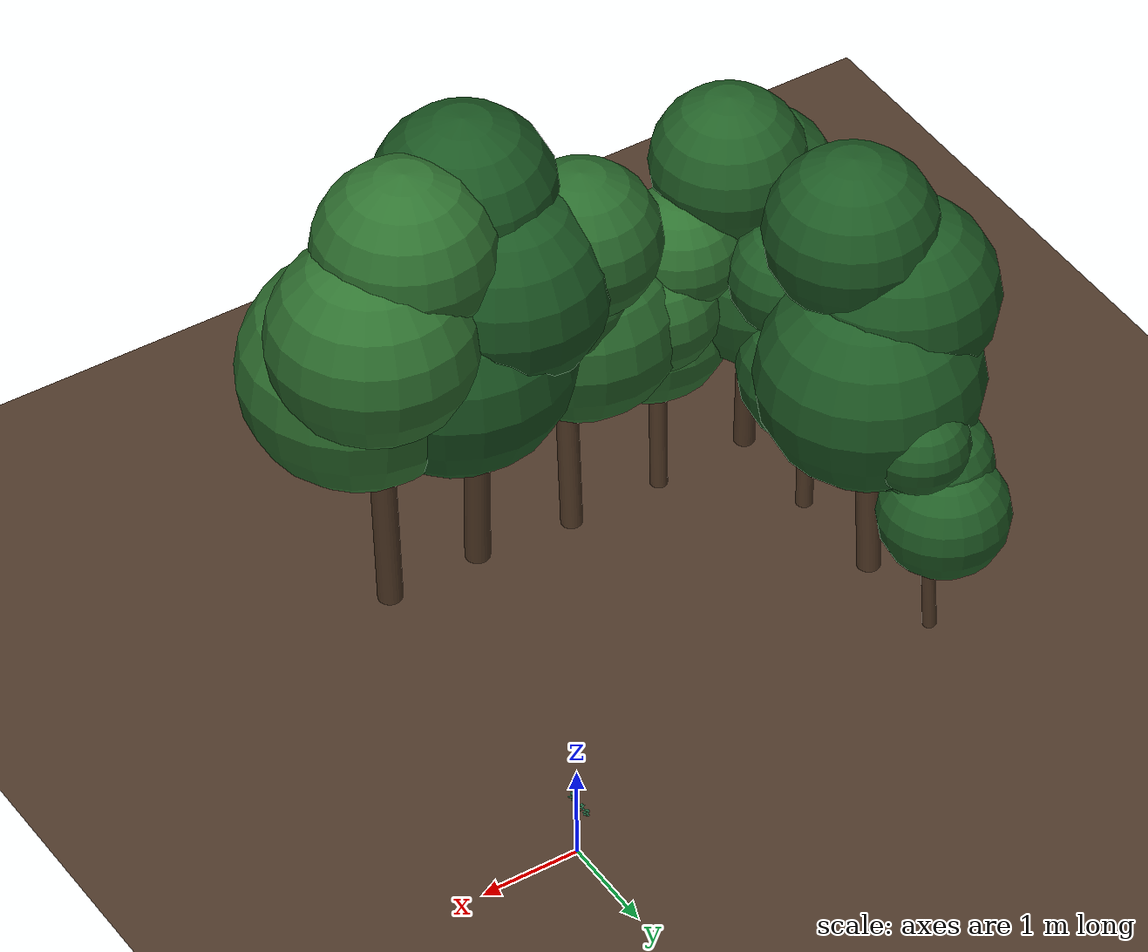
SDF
<sdf version="1.9">
 <world name="jim_field">
  <model name="ground_plane">
   <static>true</static>
   <link name="link">
    <collision name="collision">
     <geometry><plane><normal>0 0 1</normal><size>40 40</size></plane></geometry>
    </collision>
    <visual name="visual">
     <geometry><plane><normal>0 0 1</normal><size>40 40</size></plane></geometry>
     <material>
      <ambient>0.20 0.15 0.11 1</ambient>
      <diffuse>0.30 0.22 0.16 1</diffuse>
      <specular>0.01 0.01 0.01 1</specular>
     </material>
    </visual>
   </link>
  </model>
  <model name="field">
   <static>true</static>
   <pose>0.1837 -0.2516 0 0 0 0</pose>
   <model name="crop_17">
    <static>true</static>
    <pose>-0.4957 -0.3334 0 0 0 0</pose>
    <link name="link">
     <visual name="stem">
      <pose>0 0 0.0429 0 0 0</pose>
      <geometry><cylinder><radius>0.0027</radius><length>0.0858</length></cylinder></geometry>
      <material>
       <ambient>0.10 0.22 0.09 1</ambient>
       <diffuse>0.20 0.40 0.16 1</diffuse>
       <specular>0.05 0.06 0.05 1</specular>
      </material>
     </visual>
     <visual name="leaflet_0_0">
      <pose>-0.0079 -0.0168 0.0257 0 -0.300 4.2722</pose>
      <geometry><ellipsoid><radii>0.0170 0.0105 0.0016</radii></ellipsoid></geometry>
      <material>
       <ambient>0.073 0.206 0.115 1</ambient>
       <diffuse>0.137 0.391 0.248 1</diffuse>
       <specular>0.05 0.06 0.05 1</specular>
      </material>
     </visual>
     <visual name="leaflet_0_1">
      <pose>0.0079 0.0168 0.0257 0 -0.300 7.4138</pose>
      <geometry><ellipsoid><radii>0.0170 0.0105 0.0016</radii></ellipsoid></geometry>
      <material>
       <ambient>0.073 0.206 0.115 1</ambient>
       <diffuse>0.137 0.391 0.248 1</diffuse>
       <specular>0.05 0.06 0.05 1</specular>
      </material>
     </visual>
     <visual name="leaflet_1_0">
      <pose>0.0147 -0.0114 0.0435 0 -0.200 5.6222</pose>
      <geometry><ellipsoid><radii>0.0170 0.0105 0.0016</radii></ellipsoid></geometry>
      <material>
       <ambient>0.073 0.206 0.115 1</ambient>
       <diffuse>0.137 0.391 0.248 1</diffuse>
       <specular>0.05 0.06 0.05 1</specular>
      </material>
     </visual>
     <visual name="leaflet_1_1">
      <pose>-0.0147 0.0114 0.0435 0 -0.200 8.7638</pose>
      <geometry><ellipsoid><radii>0.0170 0.0105 0.0016</radii></ellipsoid></geometry>
      <material>
       <ambient>0.073 0.206 0.115 1</ambient>
       <diffuse>0.137 0.391 0.248 1</diffuse>
       <specular>0.05 0.06 0.05 1</specular>
      </material>
     </visual>
     <visual name="leaflet_2_0">
      <pose>0.0143 0.0118 0.0612 0 -0.100 6.9722</pose>
      <geometry><ellipsoid><radii>0.0170 0.0105 0.0016</radii></ellipsoid></geometry>
      <material>
       <ambient>0.073 0.206 0.115 1</ambient>
       <diffuse>0.137 0.391 0.248 1</diffuse>
       <specular>0.05 0.06 0.05 1</specular>
      </material>
     </visual>
     <visual name="leaflet_2_1">
      <pose>-0.0143 -0.0118 0.0612 0 -0.100 10.1138</pose>
      <geometry><ellipsoid><radii>0.0170 0.0105 0.0016</radii></ellipsoid></geometry>
      <material>
       <ambient>0.073 0.206 0.115 1</ambient>
       <diffuse>0.137 0.391 0.248 1</diffuse>
       <specular>0.05 0.06 0.05 1</specular>
      </material>
     </visual>
     <visual name="leaflet_terminal">
      <pose>0 0 0.0898 0 -0.12 4.2722</pose>
      <geometry><ellipsoid><radii>0.0215 0.0140 0.0018</radii></ellipsoid></geometry>
      <material>
       <ambient>0.073 0.206 0.115 1</ambient>
       <diffuse>0.137 0.391 0.248 1</diffuse>
       <specular>0.05 0.06 0.05 1</specular>
      </material>
     </visual>
    </link>
   </model>
   <model name="crop_51">
    <static>true</static>
    <pose>-0.4966 -0.1671 0 0 0 0</pose>
    <link name="link">
     <visual name="stem">
      <pose>0 0 0.0384 0 0 0</pose>
      <geometry><cylinder><radius>0.0026</radius><length>0.0768</length></cylinder></geometry>
      <material>
       <ambient>0.10 0.22 0.09 1</ambient>
       <diffuse>0.20 0.40 0.16 1</diffuse>
       <specular>0.05 0.06 0.05 1</specular>
      </material>
     </visual>
     <visual name="leaflet_0_0">
      <pose>0.0161 0.0082 0.0230 0 -0.300 0.4725</pose>
      <geometry><ellipsoid><radii>0.0170 0.0105 0.0016</radii></ellipsoid></geometry>
      <material>
       <ambient>0.096 0.244 0.145 1</ambient>
       <diffuse>0.183 0.468 0.302 1</diffuse>
       <specular>0.05 0.06 0.05 1</specular>
      </material>
     </visual>
     <visual name="leaflet_0_1">
      <pose>-0.0161 -0.0082 0.0230 0 -0.300 3.6141</pose>
      <geometry><ellipsoid><radii>0.0170 0.0105 0.0016</radii></ellipsoid></geometry>
      <material>
       <ambient>0.096 0.244 0.145 1</ambient>
       <diffuse>0.183 0.468 0.302 1</diffuse>
       <specular>0.05 0.06 0.05 1</specular>
      </material>
     </visual>
     <visual name="leaflet_1_0">
      <pose>-0.0045 0.0175 0.0389 0 -0.200 1.8225</pose>
      <geometry><ellipsoid><radii>0.0170 0.0105 0.0016</radii></ellipsoid></geometry>
      <material>
       <ambient>0.096 0.244 0.145 1</ambient>
       <diffuse>0.183 0.468 0.302 1</diffuse>
       <specular>0.05 0.06 0.05 1</specular>
      </material>
     </visual>
     <visual name="leaflet_1_1">
      <pose>0.0045 -0.0175 0.0389 0 -0.200 4.9641</pose>
      <geometry><ellipsoid><radii>0.0170 0.0105 0.0016</radii></ellipsoid></geometry>
      <material>
       <ambient>0.096 0.244 0.145 1</ambient>
       <diffuse>0.183 0.468 0.302 1</diffuse>
       <specular>0.05 0.06 0.05 1</specular>
      </material>
     </visual>
     <visual name="leaflet_2_0">
      <pose>-0.0181 -0.0006 0.0548 0 -0.100 3.1725</pose>
      <geometry><ellipsoid><radii>0.0170 0.0105 0.0016</radii></ellipsoid></geometry>
      <material>
       <ambient>0.096 0.244 0.145 1</ambient>
       <diffuse>0.183 0.468 0.302 1</diffuse>
       <specular>0.05 0.06 0.05 1</specular>
      </material>
     </visual>
     <visual name="leaflet_2_1">
      <pose>0.0181 0.0006 0.0548 0 -0.100 6.3141</pose>
      <geometry><ellipsoid><radii>0.0170 0.0105 0.0016</radii></ellipsoid></geometry>
      <material>
       <ambient>0.096 0.244 0.145 1</ambient>
       <diffuse>0.183 0.468 0.302 1</diffuse>
       <specular>0.05 0.06 0.05 1</specular>
      </material>
     </visual>
     <visual name="leaflet_terminal">
      <pose>0 0 0.0808 0 -0.12 0.4725</pose>
      <geometry><ellipsoid><radii>0.0215 0.0140 0.0018</radii></ellipsoid></geometry>
      <material>
       <ambient>0.096 0.244 0.145 1</ambient>
       <diffuse>0.183 0.468 0.302 1</diffuse>
       <specular>0.05 0.06 0.05 1</specular>
      </material>
     </visual>
    </link>
   </model>
   <model name="crop_68">
    <static>true</static>
    <pose>-0.4981 -0.0860 0 0 0 0</pose>
    <link name="link">
     <visual name="stem">
      <pose>0 0 0.0387 0 0 0</pose>
      <geometry><cylinder><radius>0.0026</radius><length>0.0774</length></cylinder></geometry>
      <material>
       <ambient>0.10 0.22 0.09 1</ambient>
       <diffuse>0.20 0.40 0.16 1</diffuse>
       <specular>0.05 0.06 0.05 1</specular>
      </material>
     </visual>
     <visual name="leaflet_0_0">
      <pose>-0.0079 0.0163 0.0232 0 -0.300 2.0237</pose>
      <geometry><ellipsoid><radii>0.0170 0.0105 0.0016</radii></ellipsoid></geometry>
      <material>
       <ambient>0.083 0.222 0.128 1</ambient>
       <diffuse>0.157 0.424 0.271 1</diffuse>
       <specular>0.05 0.06 0.05 1</specular>
      </material>
     </visual>
     <visual name="leaflet_0_1">
      <pose>0.0079 -0.0163 0.0232 0 -0.300 5.1653</pose>
      <geometry><ellipsoid><radii>0.0170 0.0105 0.0016</radii></ellipsoid></geometry>
      <material>
       <ambient>0.083 0.222 0.128 1</ambient>
       <diffuse>0.157 0.424 0.271 1</diffuse>
       <specular>0.05 0.06 0.05 1</specular>
      </material>
     </visual>
     <visual name="leaflet_1_0">
      <pose>-0.0176 -0.0042 0.0352 0 -0.200 3.3737</pose>
      <geometry><ellipsoid><radii>0.0170 0.0105 0.0016</radii></ellipsoid></geometry>
      <material>
       <ambient>0.083 0.222 0.128 1</ambient>
       <diffuse>0.157 0.424 0.271 1</diffuse>
       <specular>0.05 0.06 0.05 1</specular>
      </material>
     </visual>
     <visual name="leaflet_1_1">
      <pose>0.0176 0.0042 0.0352 0 -0.200 6.5153</pose>
      <geometry><ellipsoid><radii>0.0170 0.0105 0.0016</radii></ellipsoid></geometry>
      <material>
       <ambient>0.083 0.222 0.128 1</ambient>
       <diffuse>0.157 0.424 0.271 1</diffuse>
       <specular>0.05 0.06 0.05 1</specular>
      </material>
     </visual>
     <visual name="leaflet_2_0">
      <pose>0.0002 -0.0181 0.0472 0 -0.100 4.7237</pose>
      <geometry><ellipsoid><radii>0.0170 0.0105 0.0016</radii></ellipsoid></geometry>
      <material>
       <ambient>0.083 0.222 0.128 1</ambient>
       <diffuse>0.157 0.424 0.271 1</diffuse>
       <specular>0.05 0.06 0.05 1</specular>
      </material>
     </visual>
     <visual name="leaflet_2_1">
      <pose>-0.0002 0.0181 0.0472 0 -0.100 7.8653</pose>
      <geometry><ellipsoid><radii>0.0170 0.0105 0.0016</radii></ellipsoid></geometry>
      <material>
       <ambient>0.083 0.222 0.128 1</ambient>
       <diffuse>0.157 0.424 0.271 1</diffuse>
       <specular>0.05 0.06 0.05 1</specular>
      </material>
     </visual>
     <visual name="leaflet_3_0">
      <pose>0.0177 -0.0038 0.0592 0 0.000 6.0737</pose>
      <geometry><ellipsoid><radii>0.0170 0.0105 0.0016</radii></ellipsoid></geometry>
      <material>
       <ambient>0.083 0.222 0.128 1</ambient>
       <diffuse>0.157 0.424 0.271 1</diffuse>
       <specular>0.05 0.06 0.05 1</specular>
      </material>
     </visual>
     <visual name="leaflet_3_1">
      <pose>-0.0177 0.0038 0.0592 0 0.000 9.2153</pose>
      <geometry><ellipsoid><radii>0.0170 0.0105 0.0016</radii></ellipsoid></geometry>
      <material>
       <ambient>0.083 0.222 0.128 1</ambient>
       <diffuse>0.157 0.424 0.271 1</diffuse>
       <specular>0.05 0.06 0.05 1</specular>
      </material>
     </visual>
     <visual name="leaflet_terminal">
      <pose>0 0 0.0814 0 -0.12 2.0237</pose>
      <geometry><ellipsoid><radii>0.0215 0.0140 0.0018</radii></ellipsoid></geometry>
      <material>
       <ambient>0.083 0.222 0.128 1</ambient>
       <diffuse>0.157 0.424 0.271 1</diffuse>
       <specular>0.05 0.06 0.05 1</specular>
      </material>
     </visual>
    </link>
   </model>
   <model name="tree_21">
    <static>true</static>
    <pose>-0.5056 -3.5500 0 0 0 0</pose>
    <link name="link">
     <visual name="trunk">
      <pose>0 0 1.1012 -0.0049 0.0311 0</pose>
      <geometry><cylinder><radius>0.1224</radius><length>2.2024</length></cylinder></geometry>
      <material>
       <ambient>0.16 0.11 0.07 1</ambient>
       <diffuse>0.34 0.24 0.16 1</diffuse>
       <specular>0.03 0.03 0.03 1</specular>
      </material>
     </visual>
     <visual name="foliage_0">
      <pose>0.0826 -0.2562 2.7114 0 0 0</pose>
      <geometry><sphere><radius>1.1502</radius></sphere></geometry>
      <material>
       <ambient>0.083 0.220 0.085 1</ambient>
       <diffuse>0.184 0.447 0.189 1</diffuse>
       <specular>0.02 0.03 0.02 1</specular>
      </material>
     </visual>
     <visual name="foliage_1">
      <pose>0.1795 0.2006 3.4456 0 0 0</pose>
      <geometry><sphere><radius>1.0156</radius></sphere></geometry>
      <material>
       <ambient>0.083 0.220 0.085 1</ambient>
       <diffuse>0.184 0.447 0.189 1</diffuse>
       <specular>0.02 0.03 0.02 1</specular>
      </material>
     </visual>
     <visual name="foliage_2">
      <pose>-0.2638 0.0536 4.1797 0 0 0</pose>
      <geometry><sphere><radius>0.8810</radius></sphere></geometry>
      <material>
       <ambient>0.083 0.220 0.085 1</ambient>
       <diffuse>0.184 0.447 0.189 1</diffuse>
       <specular>0.02 0.03 0.02 1</specular>
      </material>
     </visual>
    </link>
   </model>
   <model name="tree_22">
    <static>true</static>
    <pose>-1.5167 -3.5500 0 0 0 0</pose>
    <link name="link">
     <visual name="trunk">
      <pose>0 0 1.1151 -0.0416 0.0146 0</pose>
      <geometry><cylinder><radius>0.1239</radius><length>2.2302</length></cylinder></geometry>
      <material>
       <ambient>0.16 0.11 0.07 1</ambient>
       <diffuse>0.34 0.24 0.16 1</diffuse>
       <specular>0.03 0.03 0.03 1</specular>
      </material>
     </visual>
     <visual name="foliage_0">
      <pose>0.2651 0.0634 2.7456 0 0 0</pose>
      <geometry><sphere><radius>1.1647</radius></sphere></geometry>
      <material>
       <ambient>0.052 0.172 0.061 1</ambient>
       <diffuse>0.104 0.335 0.133 1</diffuse>
       <specular>0.02 0.03 0.02 1</specular>
      </material>
     </visual>
     <visual name="foliage_1">
      <pose>-0.1886 0.1968 3.4890 0 0 0</pose>
      <geometry><sphere><radius>1.0284</radius></sphere></geometry>
      <material>
       <ambient>0.052 0.172 0.061 1</ambient>
       <diffuse>0.104 0.335 0.133 1</diffuse>
       <specular>0.02 0.03 0.02 1</specular>
      </material>
     </visual>
     <visual name="foliage_2">
      <pose>-0.0747 -0.2621 4.2324 0 0 0</pose>
      <geometry><sphere><radius>0.8921</radius></sphere></geometry>
      <material>
       <ambient>0.052 0.172 0.061 1</ambient>
       <diffuse>0.104 0.335 0.133 1</diffuse>
       <specular>0.02 0.03 0.02 1</specular>
      </material>
     </visual>
    </link>
   </model>
   <model name="tree_23">
    <static>true</static>
    <pose>-2.5278 -3.5500 0 0 0 0</pose>
    <link name="link">
     <visual name="trunk">
      <pose>0 0 0.9605 0.0491 0.0024 0</pose>
      <geometry><cylinder><radius>0.1067</radius><length>1.9211</length></cylinder></geometry>
      <material>
       <ambient>0.16 0.11 0.07 1</ambient>
       <diffuse>0.34 0.24 0.16 1</diffuse>
       <specular>0.03 0.03 0.03 1</specular>
      </material>
     </visual>
     <visual name="foliage_0">
      <pose>-0.2041 -0.1161 2.3651 0 0 0</pose>
      <geometry><sphere><radius>1.0032</radius></sphere></geometry>
      <material>
       <ambient>0.074 0.207 0.078 1</ambient>
       <diffuse>0.161 0.415 0.173 1</diffuse>
       <specular>0.02 0.03 0.02 1</specular>
      </material>
     </visual>
     <visual name="foliage_1">
      <pose>0.2033 -0.1176 3.0054 0 0 0</pose>
      <geometry><sphere><radius>0.8858</radius></sphere></geometry>
      <material>
       <ambient>0.074 0.207 0.078 1</ambient>
       <diffuse>0.161 0.415 0.173 1</diffuse>
       <specular>0.02 0.03 0.02 1</specular>
      </material>
     </visual>
     <visual name="foliage_2">
      <pose>-0.0011 0.2348 3.6458 0 0 0</pose>
      <geometry><sphere><radius>0.7684</radius></sphere></geometry>
      <material>
       <ambient>0.074 0.207 0.078 1</ambient>
       <diffuse>0.161 0.415 0.173 1</diffuse>
       <specular>0.02 0.03 0.02 1</specular>
      </material>
     </visual>
    </link>
   </model>
   <model name="tree_24">
    <static>true</static>
    <pose>-3.5389 -3.5500 0 0 0 0</pose>
    <link name="link">
     <visual name="trunk">
      <pose>0 0 0.7672 0.0418 -0.0113 0</pose>
      <geometry><cylinder><radius>0.0852</radius><length>1.5344</length></cylinder></geometry>
      <material>
       <ambient>0.16 0.11 0.07 1</ambient>
       <diffuse>0.34 0.24 0.16 1</diffuse>
       <specular>0.03 0.03 0.03 1</specular>
      </material>
     </visual>
     <visual name="foliage_0">
      <pose>-0.0123 -0.1871 1.8890 0 0 0</pose>
      <geometry><sphere><radius>0.8013</radius></sphere></geometry>
      <material>
       <ambient>0.081 0.216 0.083 1</ambient>
       <diffuse>0.177 0.438 0.184 1</diffuse>
       <specular>0.02 0.03 0.02 1</specular>
      </material>
     </visual>
     <visual name="foliage_1">
      <pose>0.1677 0.0839 2.4005 0 0 0</pose>
      <geometry><sphere><radius>0.7075</radius></sphere></geometry>
      <material>
       <ambient>0.081 0.216 0.083 1</ambient>
       <diffuse>0.177 0.438 0.184 1</diffuse>
       <specular>0.02 0.03 0.02 1</specular>
      </material>
     </visual>
     <visual name="foliage_2">
      <pose>-0.1571 0.1025 2.9119 0 0 0</pose>
      <geometry><sphere><radius>0.6138</radius></sphere></geometry>
      <material>
       <ambient>0.081 0.216 0.083 1</ambient>
       <diffuse>0.177 0.438 0.184 1</diffuse>
       <specular>0.02 0.03 0.02 1</specular>
      </material>
     </visual>
    </link>
   </model>
   <model name="tree_25">
    <static>true</static>
    <pose>-4.5500 -3.5500 0 0 0 0</pose>
    <link name="link">
     <visual name="trunk">
      <pose>0 0 0.9444 -0.0448 0.0131 0</pose>
      <geometry><cylinder><radius>0.1049</radius><length>1.8888</length></cylinder></geometry>
      <material>
       <ambient>0.16 0.11 0.07 1</ambient>
       <diffuse>0.34 0.24 0.16 1</diffuse>
       <specular>0.03 0.03 0.03 1</specular>
      </material>
     </visual>
     <visual name="foliage_0">
      <pose>-0.0977 0.2091 2.3253 0 0 0</pose>
      <geometry><sphere><radius>0.9864</radius></sphere></geometry>
      <material>
       <ambient>0.063 0.190 0.070 1</ambient>
       <diffuse>0.133 0.377 0.153 1</diffuse>
       <specular>0.02 0.03 0.02 1</specular>
      </material>
     </visual>
     <visual name="foliage_1">
      <pose>-0.1312 -0.1899 2.9549 0 0 0</pose>
      <geometry><sphere><radius>0.8709</radius></sphere></geometry>
      <material>
       <ambient>0.063 0.190 0.070 1</ambient>
       <diffuse>0.133 0.377 0.153 1</diffuse>
       <specular>0.02 0.03 0.02 1</specular>
      </material>
     </visual>
     <visual name="foliage_2">
      <pose>0.2302 -0.0174 3.5844 0 0 0</pose>
      <geometry><sphere><radius>0.7555</radius></sphere></geometry>
      <material>
       <ambient>0.063 0.190 0.070 1</ambient>
       <diffuse>0.133 0.377 0.153 1</diffuse>
       <specular>0.02 0.03 0.02 1</specular>
      </material>
     </visual>
    </link>
   </model>
   <model name="tree_26">
    <static>true</static>
    <pose>-4.5500 -2.5357 0 0 0 0</pose>
    <link name="link">
     <visual name="trunk">
      <pose>0 0 0.7480 0.0058 -0.0113 0</pose>
      <geometry><cylinder><radius>0.0831</radius><length>1.4959</length></cylinder></geometry>
      <material>
       <ambient>0.16 0.11 0.07 1</ambient>
       <diffuse>0.34 0.24 0.16 1</diffuse>
       <specular>0.03 0.03 0.03 1</specular>
      </material>
     </visual>
     <visual name="foliage_0">
      <pose>0.0107 0.1825 1.8416 0 0 0</pose>
      <geometry><sphere><radius>0.7812</radius></sphere></geometry>
      <material>
       <ambient>0.060 0.185 0.068 1</ambient>
       <diffuse>0.125 0.365 0.148 1</diffuse>
       <specular>0.02 0.03 0.02 1</specular>
      </material>
     </visual>
     <visual name="foliage_1">
      <pose>-0.1630 -0.0829 2.3403 0 0 0</pose>
      <geometry><sphere><radius>0.6898</radius></sphere></geometry>
      <material>
       <ambient>0.060 0.185 0.068 1</ambient>
       <diffuse>0.125 0.365 0.148 1</diffuse>
       <specular>0.02 0.03 0.02 1</specular>
      </material>
     </visual>
     <visual name="foliage_2">
      <pose>0.1538 -0.0988 2.8389 0 0 0</pose>
      <geometry><sphere><radius>0.5984</radius></sphere></geometry>
      <material>
       <ambient>0.060 0.185 0.068 1</ambient>
       <diffuse>0.125 0.365 0.148 1</diffuse>
       <specular>0.02 0.03 0.02 1</specular>
      </material>
     </visual>
    </link>
   </model>
   <model name="tree_27">
    <static>true</static>
    <pose>-4.5500 -1.5214 0 0 0 0</pose>
    <link name="link">
     <visual name="trunk">
      <pose>0 0 1.0415 0.0464 0.0103 0</pose>
      <geometry><cylinder><radius>0.1157</radius><length>2.0830</length></cylinder></geometry>
      <material>
       <ambient>0.16 0.11 0.07 1</ambient>
       <diffuse>0.34 0.24 0.16 1</diffuse>
       <specular>0.03 0.03 0.03 1</specular>
      </material>
     </visual>
     <visual name="foliage_0">
      <pose>0.1578 0.1998 2.5644 0 0 0</pose>
      <geometry><sphere><radius>1.0878</radius></sphere></geometry>
      <material>
       <ambient>0.056 0.179 0.065 1</ambient>
       <diffuse>0.115 0.351 0.141 1</diffuse>
       <specular>0.02 0.03 0.02 1</specular>
      </material>
     </visual>
     <visual name="foliage_1">
      <pose>-0.2521 0.0354 3.2588 0 0 0</pose>
      <geometry><sphere><radius>0.9605</radius></sphere></geometry>
      <material>
       <ambient>0.056 0.179 0.065 1</ambient>
       <diffuse>0.115 0.351 0.141 1</diffuse>
       <specular>0.02 0.03 0.02 1</specular>
      </material>
     </visual>
     <visual name="foliage_2">
      <pose>0.0968 -0.2355 3.9531 0 0 0</pose>
      <geometry><sphere><radius>0.8332</radius></sphere></geometry>
      <material>
       <ambient>0.056 0.179 0.065 1</ambient>
       <diffuse>0.115 0.351 0.141 1</diffuse>
       <specular>0.02 0.03 0.02 1</specular>
      </material>
     </visual>
    </link>
   </model>
   <model name="tree_28">
    <static>true</static>
    <pose>-4.5500 -0.5071 0 0 0 0</pose>
    <link name="link">
     <visual name="trunk">
      <pose>0 0 0.6083 0.0164 0.0417 0</pose>
      <geometry><cylinder><radius>0.0676</radius><length>1.2167</length></cylinder></geometry>
      <material>
       <ambient>0.16 0.11 0.07 1</ambient>
       <diffuse>0.34 0.24 0.16 1</diffuse>
       <specular>0.03 0.03 0.03 1</specular>
      </material>
     </visual>
     <visual name="foliage_0">
      <pose>-0.0426 0.1425 1.4979 0 0 0</pose>
      <geometry><sphere><radius>0.6354</radius></sphere></geometry>
      <material>
       <ambient>0.062 0.189 0.069 1</ambient>
       <diffuse>0.131 0.373 0.152 1</diffuse>
       <specular>0.02 0.03 0.02 1</specular>
      </material>
     </visual>
     <visual name="foliage_1">
      <pose>-0.1015 -0.1087 1.9034 0 0 0</pose>
      <geometry><sphere><radius>0.5610</radius></sphere></geometry>
      <material>
       <ambient>0.062 0.189 0.069 1</ambient>
       <diffuse>0.131 0.373 0.152 1</diffuse>
       <specular>0.02 0.03 0.02 1</specular>
      </material>
     </visual>
     <visual name="foliage_2">
      <pose>0.1451 -0.0327 2.3090 0 0 0</pose>
      <geometry><sphere><radius>0.4867</radius></sphere></geometry>
      <material>
       <ambient>0.062 0.189 0.069 1</ambient>
       <diffuse>0.131 0.373 0.152 1</diffuse>
       <specular>0.02 0.03 0.02 1</specular>
      </material>
     </visual>
    </link>
   </model>
  </model>
 </world>
</sdf>
